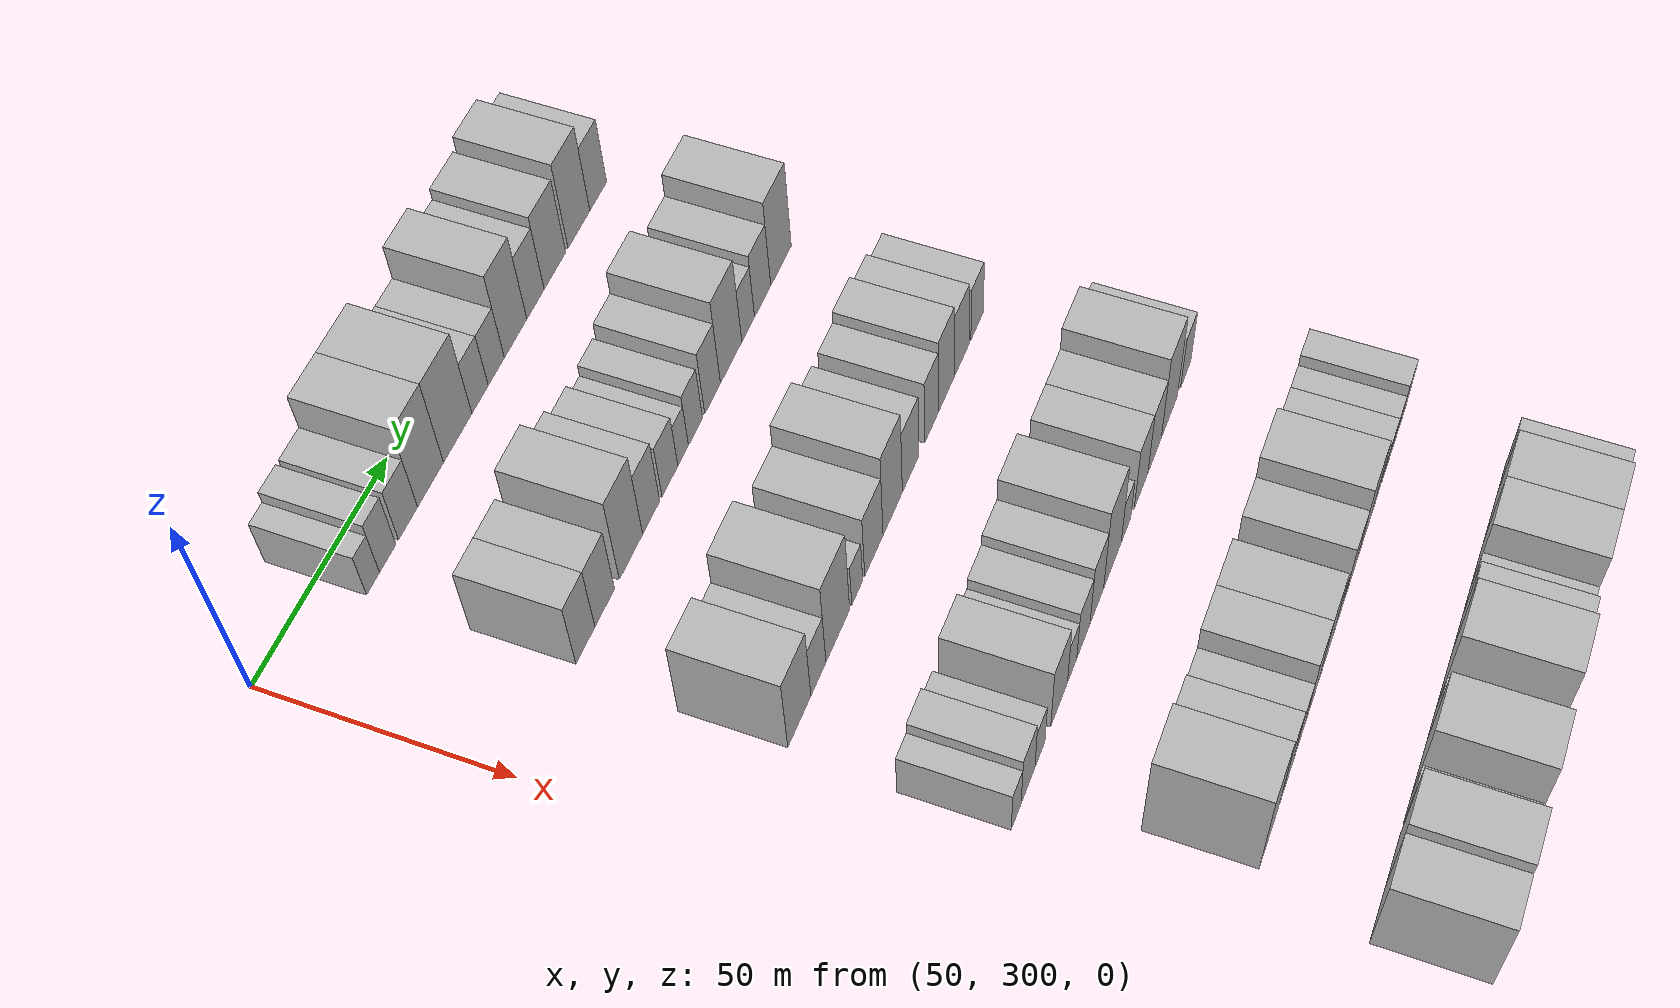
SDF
<sdf version="1.6">
 <world name="default">
  <model name="building_106">
   <static>1</static>
   <pose>50.0000 325.4204 0 0.000000 0.000000 0.000000</pose>
   <link name="link">
    <pose>0 0 6.00 0 0 0</pose>
    <collision name="collision"><geometry><box><size>20.0000 4.8585 12.0000</size></box></geometry></collision>
    <visual name="visual">
     <cast_shadows>0</cast_shadows>
     <geometry><box><size>20.0000 4.8585 12.0000</size></box></geometry>
     <material>
      <script>
       <uri>model://HANNAS_wall/materials/scripts</uri>
       <uri>model://HANNAS_wall/materials/textures</uri>
       <name>vrc/HANNAS_wall</name>
      </script>
     </material>
    </visual>
   </link>
  </model>
  <model name="building_107">
   <static>1</static>
   <pose>50.0000 330.9389 0 0.000000 0.000000 0.000000</pose>
   <link name="link">
    <pose>0 0 7.50 0 0 0</pose>
    <collision name="collision"><geometry><box><size>20.0000 6.1786 15.0000</size></box></geometry></collision>
    <visual name="visual">
     <cast_shadows>0</cast_shadows>
     <geometry><box><size>20.0000 6.1786 15.0000</size></box></geometry>
     <material>
      <script>
       <uri>model://HANNAS_wall/materials/scripts</uri>
       <uri>model://HANNAS_wall/materials/textures</uri>
       <name>vrc/HANNAS_wall</name>
      </script>
     </material>
    </visual>
   </link>
  </model>
  <model name="building_108">
   <static>1</static>
   <pose>50.0000 338.7005 0 0.000000 0.000000 0.000000</pose>
   <link name="link">
    <pose>0 0 7.50 0 0 0</pose>
    <collision name="collision"><geometry><box><size>20.0000 7.3446 15.0000</size></box></geometry></collision>
    <visual name="visual">
     <cast_shadows>0</cast_shadows>
     <geometry><box><size>20.0000 7.3446 15.0000</size></box></geometry>
     <material>
      <script>
       <uri>model://HANNAS_wall/materials/scripts</uri>
       <uri>model://HANNAS_wall/materials/textures</uri>
       <name>vrc/HANNAS_wall</name>
      </script>
     </material>
    </visual>
   </link>
  </model>
  <model name="building_109">
   <static>1</static>
   <pose>50.0000 347.5060 0 0.000000 0.000000 0.000000</pose>
   <link name="link">
    <pose>0 0 12.00 0 0 0</pose>
    <collision name="collision"><geometry><box><size>20.0000 10.2664 24.0000</size></box></geometry></collision>
    <visual name="visual">
     <cast_shadows>0</cast_shadows>
     <geometry><box><size>20.0000 10.2664 24.0000</size></box></geometry>
     <material>
      <script>
       <uri>model://HANNAS_wall/materials/scripts</uri>
       <uri>model://HANNAS_wall/materials/textures</uri>
       <name>vrc/HANNAS_wall</name>
      </script>
     </material>
    </visual>
   </link>
  </model>
  <model name="building_110">
   <static>1</static>
   <pose>50.0000 358.3746 0 0.000000 0.000000 0.000000</pose>
   <link name="link">
    <pose>0 0 12.00 0 0 0</pose>
    <collision name="collision"><geometry><box><size>20.0000 11.4708 24.0000</size></box></geometry></collision>
    <visual name="visual">
     <cast_shadows>0</cast_shadows>
     <geometry><box><size>20.0000 11.4708 24.0000</size></box></geometry>
     <material>
      <script>
       <uri>model://HANNAS_wall/materials/scripts</uri>
       <uri>model://HANNAS_wall/materials/textures</uri>
       <name>vrc/HANNAS_wall</name>
      </script>
     </material>
    </visual>
   </link>
  </model>
  <model name="building_111">
   <static>1</static>
   <pose>50.0000 367.4902 0 0.000000 0.000000 0.000000</pose>
   <link name="link">
    <pose>0 0 7.50 0 0 0</pose>
    <collision name="collision"><geometry><box><size>20.0000 6.7602 15.0000</size></box></geometry></collision>
    <visual name="visual">
     <cast_shadows>0</cast_shadows>
     <geometry><box><size>20.0000 6.7602 15.0000</size></box></geometry>
     <material>
      <script>
       <uri>model://HANNAS_wall/materials/scripts</uri>
       <uri>model://HANNAS_wall/materials/textures</uri>
       <name>vrc/HANNAS_wall</name>
      </script>
     </material>
    </visual>
   </link>
  </model>
  <model name="building_112">
   <static>1</static>
   <pose>50.0000 374.2570 0 0.000000 0.000000 0.000000</pose>
   <link name="link">
    <pose>0 0 7.50 0 0 0</pose>
    <collision name="collision"><geometry><box><size>20.0000 6.7734 15.0000</size></box></geometry></collision>
    <visual name="visual">
     <cast_shadows>0</cast_shadows>
     <geometry><box><size>20.0000 6.7734 15.0000</size></box></geometry>
     <material>
      <script>
       <uri>model://HANNAS_wall/materials/scripts</uri>
       <uri>model://HANNAS_wall/materials/textures</uri>
       <name>vrc/HANNAS_wall</name>
      </script>
     </material>
    </visual>
   </link>
  </model>
  <model name="building_113">
   <static>1</static>
   <pose>50.0000 382.4580 0 0.000000 0.000000 0.000000</pose>
   <link name="link">
    <pose>0 0 12.00 0 0 0</pose>
    <collision name="collision"><geometry><box><size>20.0000 9.6285 24.0000</size></box></geometry></collision>
    <visual name="visual">
     <cast_shadows>0</cast_shadows>
     <geometry><box><size>20.0000 9.6285 24.0000</size></box></geometry>
     <material>
      <script>
       <uri>model://HANNAS_wall/materials/scripts</uri>
       <uri>model://HANNAS_wall/materials/textures</uri>
       <name>vrc/HANNAS_wall</name>
      </script>
     </material>
    </visual>
   </link>
  </model>
  <model name="building_114">
   <static>1</static>
   <pose>50.0000 391.0517 0 0.000000 0.000000 0.000000</pose>
   <link name="link">
    <pose>0 0 9.00 0 0 0</pose>
    <collision name="collision"><geometry><box><size>20.0000 7.5590 18.0000</size></box></geometry></collision>
    <visual name="visual">
     <cast_shadows>0</cast_shadows>
     <geometry><box><size>20.0000 7.5590 18.0000</size></box></geometry>
     <material>
      <script>
       <uri>model://HANNAS_wall/materials/scripts</uri>
       <uri>model://HANNAS_wall/materials/textures</uri>
       <name>vrc/HANNAS_wall</name>
      </script>
     </material>
    </visual>
   </link>
  </model>
  <model name="building_115">
   <static>1</static>
   <pose>50.0000 399.6458 0 0.000000 0.000000 0.000000</pose>
   <link name="link">
    <pose>0 0 10.50 0 0 0</pose>
    <collision name="collision"><geometry><box><size>20.0000 9.6291 21.0000</size></box></geometry></collision>
    <visual name="visual">
     <cast_shadows>0</cast_shadows>
     <geometry><box><size>20.0000 9.6291 21.0000</size></box></geometry>
     <material>
      <script>
       <uri>model://HANNAS_wall/materials/scripts</uri>
       <uri>model://HANNAS_wall/materials/textures</uri>
       <name>vrc/HANNAS_wall</name>
      </script>
     </material>
    </visual>
   </link>
  </model>
  <model name="building_116">
   <static>1</static>
   <pose>50.0000 410.4415 0 0.000000 0.000000 0.000000</pose>
   <link name="link">
    <pose>0 0 12.00 0 0 0</pose>
    <collision name="collision"><geometry><box><size>20.0000 9.9625 24.0000</size></box></geometry></collision>
    <visual name="visual">
     <cast_shadows>0</cast_shadows>
     <geometry><box><size>20.0000 9.9625 24.0000</size></box></geometry>
     <material>
      <script>
       <uri>model://HANNAS_wall/materials/scripts</uri>
       <uri>model://HANNAS_wall/materials/textures</uri>
       <name>vrc/HANNAS_wall</name>
      </script>
     </material>
    </visual>
   </link>
  </model>
  <model name="building_117">
   <static>1</static>
   <pose>50.0000 419.3106 0 0.000000 0.000000 0.000000</pose>
   <link name="link">
    <pose>0 0 9.00 0 0 0</pose>
    <collision name="collision"><geometry><box><size>20.0000 7.7757 18.0000</size></box></geometry></collision>
    <visual name="visual">
     <cast_shadows>0</cast_shadows>
     <geometry><box><size>20.0000 7.7757 18.0000</size></box></geometry>
     <material>
      <script>
       <uri>model://HANNAS_wall/materials/scripts</uri>
       <uri>model://HANNAS_wall/materials/textures</uri>
       <name>vrc/HANNAS_wall</name>
      </script>
     </material>
    </visual>
   </link>
  </model>
  <model name="building_244">
   <static>1</static>
   <pose>90.0000 326.8426 0 0.000000 0.000000 0.000000</pose>
   <link name="link">
    <pose>0 0 9.00 0 0 0</pose>
    <collision name="collision"><geometry><box><size>20.0000 7.7727 18.0000</size></box></geometry></collision>
    <visual name="visual">
     <cast_shadows>0</cast_shadows>
     <geometry><box><size>20.0000 7.7727 18.0000</size></box></geometry>
     <material>
      <script>
       <uri>model://HANNAS_wall/materials/scripts</uri>
       <uri>model://HANNAS_wall/materials/textures</uri>
       <name>vrc/HANNAS_wall</name>
      </script>
     </material>
    </visual>
   </link>
  </model>
  <model name="building_245">
   <static>1</static>
   <pose>90.0000 334.8134 0 0.000000 0.000000 0.000000</pose>
   <link name="link">
    <pose>0 0 9.00 0 0 0</pose>
    <collision name="collision"><geometry><box><size>20.0000 8.1689 18.0000</size></box></geometry></collision>
    <visual name="visual">
     <cast_shadows>0</cast_shadows>
     <geometry><box><size>20.0000 8.1689 18.0000</size></box></geometry>
     <material>
      <script>
       <uri>model://HANNAS_wall/materials/scripts</uri>
       <uri>model://HANNAS_wall/materials/textures</uri>
       <name>vrc/HANNAS_wall</name>
      </script>
     </material>
    </visual>
   </link>
  </model>
  <model name="building_246">
   <static>1</static>
   <pose>90.0000 345.8776 0 0.000000 0.000000 0.000000</pose>
   <link name="link">
    <pose>0 0 12.00 0 0 0</pose>
    <collision name="collision"><geometry><box><size>20.0000 9.9597 24.0000</size></box></geometry></collision>
    <visual name="visual">
     <cast_shadows>0</cast_shadows>
     <geometry><box><size>20.0000 9.9597 24.0000</size></box></geometry>
     <material>
      <script>
       <uri>model://HANNAS_wall/materials/scripts</uri>
       <uri>model://HANNAS_wall/materials/textures</uri>
       <name>vrc/HANNAS_wall</name>
      </script>
     </material>
    </visual>
   </link>
  </model>
  <model name="building_247">
   <static>1</static>
   <pose>90.0000 354.5977 0 0.000000 0.000000 0.000000</pose>
   <link name="link">
    <pose>0 0 9.00 0 0 0</pose>
    <collision name="collision"><geometry><box><size>20.0000 7.4805 18.0000</size></box></geometry></collision>
    <visual name="visual">
     <cast_shadows>0</cast_shadows>
     <geometry><box><size>20.0000 7.4805 18.0000</size></box></geometry>
     <material>
      <script>
       <uri>model://HANNAS_wall/materials/scripts</uri>
       <uri>model://HANNAS_wall/materials/textures</uri>
       <name>vrc/HANNAS_wall</name>
      </script>
     </material>
    </visual>
   </link>
  </model>
  <model name="building_248">
   <static>1</static>
   <pose>90.0000 362.8601 0 0.000000 0.000000 0.000000</pose>
   <link name="link">
    <pose>0 0 7.50 0 0 0</pose>
    <collision name="collision"><geometry><box><size>20.0000 7.0443 15.0000</size></box></geometry></collision>
    <visual name="visual">
     <cast_shadows>0</cast_shadows>
     <geometry><box><size>20.0000 7.0443 15.0000</size></box></geometry>
     <material>
      <script>
       <uri>model://HANNAS_wall/materials/scripts</uri>
       <uri>model://HANNAS_wall/materials/textures</uri>
       <name>vrc/HANNAS_wall</name>
      </script>
     </material>
    </visual>
   </link>
  </model>
  <model name="building_249">
   <static>1</static>
   <pose>90.0000 368.7837 0 0.000000 0.000000 0.000000</pose>
   <link name="link">
    <pose>0 0 6.00 0 0 0</pose>
    <collision name="collision"><geometry><box><size>20.0000 4.8031 12.0000</size></box></geometry></collision>
    <visual name="visual">
     <cast_shadows>0</cast_shadows>
     <geometry><box><size>20.0000 4.8031 12.0000</size></box></geometry>
     <material>
      <script>
       <uri>model://HANNAS_wall/materials/scripts</uri>
       <uri>model://HANNAS_wall/materials/textures</uri>
       <name>vrc/HANNAS_wall</name>
      </script>
     </material>
    </visual>
   </link>
  </model>
  <model name="building_250">
   <static>1</static>
   <pose>90.0000 374.4103 0 0.000000 0.000000 0.000000</pose>
   <link name="link">
    <pose>0 0 7.50 0 0 0</pose>
    <collision name="collision"><geometry><box><size>20.0000 6.4501 15.0000</size></box></geometry></collision>
    <visual name="visual">
     <cast_shadows>0</cast_shadows>
     <geometry><box><size>20.0000 6.4501 15.0000</size></box></geometry>
     <material>
      <script>
       <uri>model://HANNAS_wall/materials/scripts</uri>
       <uri>model://HANNAS_wall/materials/textures</uri>
       <name>vrc/HANNAS_wall</name>
      </script>
     </material>
    </visual>
   </link>
  </model>
  <model name="building_251">
   <static>1</static>
   <pose>90.0000 382.3186 0 0.000000 0.000000 0.000000</pose>
   <link name="link">
    <pose>0 0 9.00 0 0 0</pose>
    <collision name="collision"><geometry><box><size>20.0000 7.3665 18.0000</size></box></geometry></collision>
    <visual name="visual">
     <cast_shadows>0</cast_shadows>
     <geometry><box><size>20.0000 7.3665 18.0000</size></box></geometry>
     <material>
      <script>
       <uri>model://HANNAS_wall/materials/scripts</uri>
       <uri>model://HANNAS_wall/materials/textures</uri>
       <name>vrc/HANNAS_wall</name>
      </script>
     </material>
    </visual>
   </link>
  </model>
  <model name="building_252">
   <static>1</static>
   <pose>90.0000 391.0927 0 0.000000 0.000000 0.000000</pose>
   <link name="link">
    <pose>0 0 12.00 0 0 0</pose>
    <collision name="collision"><geometry><box><size>20.0000 10.1816 24.0000</size></box></geometry></collision>
    <visual name="visual">
     <cast_shadows>0</cast_shadows>
     <geometry><box><size>20.0000 10.1816 24.0000</size></box></geometry>
     <material>
      <script>
       <uri>model://HANNAS_wall/materials/scripts</uri>
       <uri>model://HANNAS_wall/materials/textures</uri>
       <name>vrc/HANNAS_wall</name>
      </script>
     </material>
    </visual>
   </link>
  </model>
  <model name="building_253">
   <static>1</static>
   <pose>90.0000 399.2632 0 0.000000 0.000000 0.000000</pose>
   <link name="link">
    <pose>0 0 7.50 0 0 0</pose>
    <collision name="collision"><geometry><box><size>20.0000 6.1594 15.0000</size></box></geometry></collision>
    <visual name="visual">
     <cast_shadows>0</cast_shadows>
     <geometry><box><size>20.0000 6.1594 15.0000</size></box></geometry>
     <material>
      <script>
       <uri>model://HANNAS_wall/materials/scripts</uri>
       <uri>model://HANNAS_wall/materials/textures</uri>
       <name>vrc/HANNAS_wall</name>
      </script>
     </material>
    </visual>
   </link>
  </model>
  <model name="building_254">
   <static>1</static>
   <pose>90.0000 406.3347 0 0.000000 0.000000 0.000000</pose>
   <link name="link">
    <pose>0 0 9.00 0 0 0</pose>
    <collision name="collision"><geometry><box><size>20.0000 7.9835 18.0000</size></box></geometry></collision>
    <visual name="visual">
     <cast_shadows>0</cast_shadows>
     <geometry><box><size>20.0000 7.9835 18.0000</size></box></geometry>
     <material>
      <script>
       <uri>model://HANNAS_wall/materials/scripts</uri>
       <uri>model://HANNAS_wall/materials/textures</uri>
       <name>vrc/HANNAS_wall</name>
      </script>
     </material>
    </visual>
   </link>
  </model>
  <model name="building_255">
   <static>1</static>
   <pose>90.0000 415.4779 0 0.000000 0.000000 0.000000</pose>
   <link name="link">
    <pose>0 0 12.00 0 0 0</pose>
    <collision name="collision"><geometry><box><size>20.0000 10.3031 24.0000</size></box></geometry></collision>
    <visual name="visual">
     <cast_shadows>0</cast_shadows>
     <geometry><box><size>20.0000 10.3031 24.0000</size></box></geometry>
     <material>
      <script>
       <uri>model://HANNAS_wall/materials/scripts</uri>
       <uri>model://HANNAS_wall/materials/textures</uri>
       <name>vrc/HANNAS_wall</name>
      </script>
     </material>
    </visual>
   </link>
  </model>
  <model name="building_389">
   <static>1</static>
   <pose>130.0000 325.7449 0 0.000000 0.000000 0.000000</pose>
   <link name="link">
    <pose>0 0 10.50 0 0 0</pose>
    <collision name="collision"><geometry><box><size>20.0000 10.3652 21.0000</size></box></geometry></collision>
    <visual name="visual">
     <cast_shadows>0</cast_shadows>
     <geometry><box><size>20.0000 10.3652 21.0000</size></box></geometry>
     <material>
      <script>
       <uri>model://HANNAS_wall/materials/scripts</uri>
       <uri>model://HANNAS_wall/materials/textures</uri>
       <name>vrc/HANNAS_wall</name>
      </script>
     </material>
    </visual>
   </link>
  </model>
  <model name="building_390">
   <static>1</static>
   <pose>130.0000 334.3861 0 0.000000 0.000000 0.000000</pose>
   <link name="link">
    <pose>0 0 7.50 0 0 0</pose>
    <collision name="collision"><geometry><box><size>20.0000 6.9171 15.0000</size></box></geometry></collision>
    <visual name="visual">
     <cast_shadows>0</cast_shadows>
     <geometry><box><size>20.0000 6.9171 15.0000</size></box></geometry>
     <material>
      <script>
       <uri>model://HANNAS_wall/materials/scripts</uri>
       <uri>model://HANNAS_wall/materials/textures</uri>
       <name>vrc/HANNAS_wall</name>
      </script>
     </material>
    </visual>
   </link>
  </model>
  <model name="building_391">
   <static>1</static>
   <pose>130.0000 343.4129 0 0.000000 0.000000 0.000000</pose>
   <link name="link">
    <pose>0 0 12.00 0 0 0</pose>
    <collision name="collision"><geometry><box><size>20.0000 11.1364 24.0000</size></box></geometry></collision>
    <visual name="visual">
     <cast_shadows>0</cast_shadows>
     <geometry><box><size>20.0000 11.1364 24.0000</size></box></geometry>
     <material>
      <script>
       <uri>model://HANNAS_wall/materials/scripts</uri>
       <uri>model://HANNAS_wall/materials/textures</uri>
       <name>vrc/HANNAS_wall</name>
      </script>
     </material>
    </visual>
   </link>
  </model>
  <model name="building_392">
   <static>1</static>
   <pose>130.0000 352.5982 0 0.000000 0.000000 0.000000</pose>
   <link name="link">
    <pose>0 0 6.00 0 0 0</pose>
    <collision name="collision"><geometry><box><size>20.0000 5.2343 12.0000</size></box></geometry></collision>
    <visual name="visual">
     <cast_shadows>0</cast_shadows>
     <geometry><box><size>20.0000 5.2343 12.0000</size></box></geometry>
     <material>
      <script>
       <uri>model://HANNAS_wall/materials/scripts</uri>
       <uri>model://HANNAS_wall/materials/textures</uri>
       <name>vrc/HANNAS_wall</name>
      </script>
     </material>
    </visual>
   </link>
  </model>
  <model name="building_393">
   <static>1</static>
   <pose>130.0000 360.7076 0 0.000000 0.000000 0.000000</pose>
   <link name="link">
    <pose>0 0 9.00 0 0 0</pose>
    <collision name="collision"><geometry><box><size>20.0000 8.9844 18.0000</size></box></geometry></collision>
    <visual name="visual">
     <cast_shadows>0</cast_shadows>
     <geometry><box><size>20.0000 8.9844 18.0000</size></box></geometry>
     <material>
      <script>
       <uri>model://HANNAS_wall/materials/scripts</uri>
       <uri>model://HANNAS_wall/materials/textures</uri>
       <name>vrc/HANNAS_wall</name>
      </script>
     </material>
    </visual>
   </link>
  </model>
  <model name="building_394">
   <static>1</static>
   <pose>130.0000 370.0457 0 0.000000 0.000000 0.000000</pose>
   <link name="link">
    <pose>0 0 12.00 0 0 0</pose>
    <collision name="collision"><geometry><box><size>20.0000 9.6919 24.0000</size></box></geometry></collision>
    <visual name="visual">
     <cast_shadows>0</cast_shadows>
     <geometry><box><size>20.0000 9.6919 24.0000</size></box></geometry>
     <material>
      <script>
       <uri>model://HANNAS_wall/materials/scripts</uri>
       <uri>model://HANNAS_wall/materials/textures</uri>
       <name>vrc/HANNAS_wall</name>
      </script>
     </material>
    </visual>
   </link>
  </model>
  <model name="building_395">
   <static>1</static>
   <pose>130.0000 379.1431 0 0.000000 0.000000 0.000000</pose>
   <link name="link">
    <pose>0 0 9.00 0 0 0</pose>
    <collision name="collision"><geometry><box><size>20.0000 8.5029 18.0000</size></box></geometry></collision>
    <visual name="visual">
     <cast_shadows>0</cast_shadows>
     <geometry><box><size>20.0000 8.5029 18.0000</size></box></geometry>
     <material>
      <script>
       <uri>model://HANNAS_wall/materials/scripts</uri>
       <uri>model://HANNAS_wall/materials/textures</uri>
       <name>vrc/HANNAS_wall</name>
      </script>
     </material>
    </visual>
   </link>
  </model>
  <model name="building_396">
   <static>1</static>
   <pose>130.0000 389.9962 0 0.000000 0.000000 0.000000</pose>
   <link name="link">
    <pose>0 0 9.00 0 0 0</pose>
    <collision name="collision"><geometry><box><size>20.0000 7.2033 18.0000</size></box></geometry></collision>
    <visual name="visual">
     <cast_shadows>0</cast_shadows>
     <geometry><box><size>20.0000 7.2033 18.0000</size></box></geometry>
     <material>
      <script>
       <uri>model://HANNAS_wall/materials/scripts</uri>
       <uri>model://HANNAS_wall/materials/textures</uri>
       <name>vrc/HANNAS_wall</name>
      </script>
     </material>
    </visual>
   </link>
  </model>
  <model name="building_397">
   <static>1</static>
   <pose>130.0000 397.8140 0 0.000000 0.000000 0.000000</pose>
   <link name="link">
    <pose>0 0 10.50 0 0 0</pose>
    <collision name="collision"><geometry><box><size>20.0000 8.4322 21.0000</size></box></geometry></collision>
    <visual name="visual">
     <cast_shadows>0</cast_shadows>
     <geometry><box><size>20.0000 8.4322 21.0000</size></box></geometry>
     <material>
      <script>
       <uri>model://HANNAS_wall/materials/scripts</uri>
       <uri>model://HANNAS_wall/materials/textures</uri>
       <name>vrc/HANNAS_wall</name>
      </script>
     </material>
    </visual>
   </link>
  </model>
  <model name="building_398">
   <static>1</static>
   <pose>130.0000 406.1088 0 0.000000 0.000000 0.000000</pose>
   <link name="link">
    <pose>0 0 9.00 0 0 0</pose>
    <collision name="collision"><geometry><box><size>20.0000 8.1574 18.0000</size></box></geometry></collision>
    <visual name="visual">
     <cast_shadows>0</cast_shadows>
     <geometry><box><size>20.0000 8.1574 18.0000</size></box></geometry>
     <material>
      <script>
       <uri>model://HANNAS_wall/materials/scripts</uri>
       <uri>model://HANNAS_wall/materials/textures</uri>
       <name>vrc/HANNAS_wall</name>
      </script>
     </material>
    </visual>
   </link>
  </model>
  <model name="building_399">
   <static>1</static>
   <pose>130.0000 414.6578 0 0.000000 0.000000 0.000000</pose>
   <link name="link">
    <pose>0 0 7.50 0 0 0</pose>
    <collision name="collision"><geometry><box><size>20.0000 6.9406 15.0000</size></box></geometry></collision>
    <visual name="visual">
     <cast_shadows>0</cast_shadows>
     <geometry><box><size>20.0000 6.9406 15.0000</size></box></geometry>
     <material>
      <script>
       <uri>model://HANNAS_wall/materials/scripts</uri>
       <uri>model://HANNAS_wall/materials/textures</uri>
       <name>vrc/HANNAS_wall</name>
      </script>
     </material>
    </visual>
   </link>
  </model>
  <model name="building_533">
   <static>1</static>
   <pose>170.0000 321.5762 0 0.000000 0.000000 0.000000</pose>
   <link name="link">
    <pose>0 0 6.00 0 0 0</pose>
    <collision name="collision"><geometry><box><size>20.0000 4.9804 12.0000</size></box></geometry></collision>
    <visual name="visual">
     <cast_shadows>0</cast_shadows>
     <geometry><box><size>20.0000 4.9804 12.0000</size></box></geometry>
     <material>
      <script>
       <uri>model://HANNAS_wall/materials/scripts</uri>
       <uri>model://HANNAS_wall/materials/textures</uri>
       <name>vrc/HANNAS_wall</name>
      </script>
     </material>
    </visual>
   </link>
  </model>
  <model name="building_534">
   <static>1</static>
   <pose>170.0000 327.5664 0 0.000000 0.000000 0.000000</pose>
   <link name="link">
    <pose>0 0 7.50 0 0 0</pose>
    <collision name="collision"><geometry><box><size>20.0000 7.0000 15.0000</size></box></geometry></collision>
    <visual name="visual">
     <cast_shadows>0</cast_shadows>
     <geometry><box><size>20.0000 7.0000 15.0000</size></box></geometry>
     <material>
      <script>
       <uri>model://HANNAS_wall/materials/scripts</uri>
       <uri>model://HANNAS_wall/materials/textures</uri>
       <name>vrc/HANNAS_wall</name>
      </script>
     </material>
    </visual>
   </link>
  </model>
  <model name="building_535">
   <static>1</static>
   <pose>170.0000 333.6730 0 0.000000 0.000000 0.000000</pose>
   <link name="link">
    <pose>0 0 6.00 0 0 0</pose>
    <collision name="collision"><geometry><box><size>20.0000 5.2133 12.0000</size></box></geometry></collision>
    <visual name="visual">
     <cast_shadows>0</cast_shadows>
     <geometry><box><size>20.0000 5.2133 12.0000</size></box></geometry>
     <material>
      <script>
       <uri>model://HANNAS_wall/materials/scripts</uri>
       <uri>model://HANNAS_wall/materials/textures</uri>
       <name>vrc/HANNAS_wall</name>
      </script>
     </material>
    </visual>
   </link>
  </model>
  <model name="building_536">
   <static>1</static>
   <pose>170.0000 343.7082 0 0.000000 0.000000 0.000000</pose>
   <link name="link">
    <pose>0 0 9.00 0 0 0</pose>
    <collision name="collision"><geometry><box><size>20.0000 8.8570 18.0000</size></box></geometry></collision>
    <visual name="visual">
     <cast_shadows>0</cast_shadows>
     <geometry><box><size>20.0000 8.8570 18.0000</size></box></geometry>
     <material>
      <script>
       <uri>model://HANNAS_wall/materials/scripts</uri>
       <uri>model://HANNAS_wall/materials/textures</uri>
       <name>vrc/HANNAS_wall</name>
      </script>
     </material>
    </visual>
   </link>
  </model>
  <model name="building_537">
   <static>1</static>
   <pose>170.0000 350.6334 0 0.000000 0.000000 0.000000</pose>
   <link name="link">
    <pose>0 0 6.00 0 0 0</pose>
    <collision name="collision"><geometry><box><size>20.0000 4.9932 12.0000</size></box></geometry></collision>
    <visual name="visual">
     <cast_shadows>0</cast_shadows>
     <geometry><box><size>20.0000 4.9932 12.0000</size></box></geometry>
     <material>
      <script>
       <uri>model://HANNAS_wall/materials/scripts</uri>
       <uri>model://HANNAS_wall/materials/textures</uri>
       <name>vrc/HANNAS_wall</name>
      </script>
     </material>
    </visual>
   </link>
  </model>
  <model name="building_538">
   <static>1</static>
   <pose>170.0000 356.7687 0 0.000000 0.000000 0.000000</pose>
   <link name="link">
    <pose>0 0 7.50 0 0 0</pose>
    <collision name="collision"><geometry><box><size>20.0000 7.2774 15.0000</size></box></geometry></collision>
    <visual name="visual">
     <cast_shadows>0</cast_shadows>
     <geometry><box><size>20.0000 7.2774 15.0000</size></box></geometry>
     <material>
      <script>
       <uri>model://HANNAS_wall/materials/scripts</uri>
       <uri>model://HANNAS_wall/materials/textures</uri>
       <name>vrc/HANNAS_wall</name>
      </script>
     </material>
    </visual>
   </link>
  </model>
  <model name="building_539">
   <static>1</static>
   <pose>170.0000 364.2369 0 0.000000 0.000000 0.000000</pose>
   <link name="link">
    <pose>0 0 9.00 0 0 0</pose>
    <collision name="collision"><geometry><box><size>20.0000 7.6590 18.0000</size></box></geometry></collision>
    <visual name="visual">
     <cast_shadows>0</cast_shadows>
     <geometry><box><size>20.0000 7.6590 18.0000</size></box></geometry>
     <material>
      <script>
       <uri>model://HANNAS_wall/materials/scripts</uri>
       <uri>model://HANNAS_wall/materials/textures</uri>
       <name>vrc/HANNAS_wall</name>
      </script>
     </material>
    </visual>
   </link>
  </model>
  <model name="building_540">
   <static>1</static>
   <pose>170.0000 373.0842 0 0.000000 0.000000 0.000000</pose>
   <link name="link">
    <pose>0 0 12.00 0 0 0</pose>
    <collision name="collision"><geometry><box><size>20.0000 10.0356 24.0000</size></box></geometry></collision>
    <visual name="visual">
     <cast_shadows>0</cast_shadows>
     <geometry><box><size>20.0000 10.0356 24.0000</size></box></geometry>
     <material>
      <script>
       <uri>model://HANNAS_wall/materials/scripts</uri>
       <uri>model://HANNAS_wall/materials/textures</uri>
       <name>vrc/HANNAS_wall</name>
      </script>
     </material>
    </visual>
   </link>
  </model>
  <model name="building_541">
   <static>1</static>
   <pose>170.0000 380.8771 0 0.000000 0.000000 0.000000</pose>
   <link name="link">
    <pose>0 0 6.00 0 0 0</pose>
    <collision name="collision"><geometry><box><size>20.0000 5.5501 12.0000</size></box></geometry></collision>
    <visual name="visual">
     <cast_shadows>0</cast_shadows>
     <geometry><box><size>20.0000 5.5501 12.0000</size></box></geometry>
     <material>
      <script>
       <uri>model://HANNAS_wall/materials/scripts</uri>
       <uri>model://HANNAS_wall/materials/textures</uri>
       <name>vrc/HANNAS_wall</name>
      </script>
     </material>
    </visual>
   </link>
  </model>
  <model name="building_542">
   <static>1</static>
   <pose>170.0000 389.7704 0 0.000000 0.000000 0.000000</pose>
   <link name="link">
    <pose>0 0 9.00 0 0 0</pose>
    <collision name="collision"><geometry><box><size>20.0000 8.2366 18.0000</size></box></geometry></collision>
    <visual name="visual">
     <cast_shadows>0</cast_shadows>
     <geometry><box><size>20.0000 8.2366 18.0000</size></box></geometry>
     <material>
      <script>
       <uri>model://HANNAS_wall/materials/scripts</uri>
       <uri>model://HANNAS_wall/materials/textures</uri>
       <name>vrc/HANNAS_wall</name>
      </script>
     </material>
    </visual>
   </link>
  </model>
  <model name="building_543">
   <static>1</static>
   <pose>170.0000 397.9026 0 0.000000 0.000000 0.000000</pose>
   <link name="link">
    <pose>0 0 9.00 0 0 0</pose>
    <collision name="collision"><geometry><box><size>20.0000 8.0278 18.0000</size></box></geometry></collision>
    <visual name="visual">
     <cast_shadows>0</cast_shadows>
     <geometry><box><size>20.0000 8.0278 18.0000</size></box></geometry>
     <material>
      <script>
       <uri>model://HANNAS_wall/materials/scripts</uri>
       <uri>model://HANNAS_wall/materials/textures</uri>
       <name>vrc/HANNAS_wall</name>
      </script>
     </material>
    </visual>
   </link>
  </model>
  <model name="building_544">
   <static>1</static>
   <pose>170.0000 406.9036 0 0.000000 0.000000 0.000000</pose>
   <link name="link">
    <pose>0 0 12.00 0 0 0</pose>
    <collision name="collision"><geometry><box><size>20.0000 9.9741 24.0000</size></box></geometry></collision>
    <visual name="visual">
     <cast_shadows>0</cast_shadows>
     <geometry><box><size>20.0000 9.9741 24.0000</size></box></geometry>
     <material>
      <script>
       <uri>model://HANNAS_wall/materials/scripts</uri>
       <uri>model://HANNAS_wall/materials/textures</uri>
       <name>vrc/HANNAS_wall</name>
      </script>
     </material>
    </visual>
   </link>
  </model>
  <model name="building_545">
   <static>1</static>
   <pose>170.0000 417.1855 0 0.000000 0.000000 0.000000</pose>
   <link name="link">
    <pose>0 0 7.50 0 0 0</pose>
    <collision name="collision"><geometry><box><size>20.0000 6.5897 15.0000</size></box></geometry></collision>
    <visual name="visual">
     <cast_shadows>0</cast_shadows>
     <geometry><box><size>20.0000 6.5897 15.0000</size></box></geometry>
     <material>
      <script>
       <uri>model://HANNAS_wall/materials/scripts</uri>
       <uri>model://HANNAS_wall/materials/textures</uri>
       <name>vrc/HANNAS_wall</name>
      </script>
     </material>
    </visual>
   </link>
  </model>
  <model name="building_679">
   <static>1</static>
   <pose>210.0000 331.9483 0 0.000000 0.000000 0.000000</pose>
   <link name="link">
    <pose>0 0 12.00 0 0 0</pose>
    <collision name="collision"><geometry><box><size>20.0000 11.2717 24.0000</size></box></geometry></collision>
    <visual name="visual">
     <cast_shadows>0</cast_shadows>
     <geometry><box><size>20.0000 11.2717 24.0000</size></box></geometry>
     <material>
      <script>
       <uri>model://HANNAS_wall/materials/scripts</uri>
       <uri>model://HANNAS_wall/materials/textures</uri>
       <name>vrc/HANNAS_wall</name>
      </script>
     </material>
    </visual>
   </link>
  </model>
  <model name="building_680">
   <static>1</static>
   <pose>210.0000 342.5881 0 0.000000 0.000000 0.000000</pose>
   <link name="link">
    <pose>0 0 9.00 0 0 0</pose>
    <collision name="collision"><geometry><box><size>20.0000 8.0079 18.0000</size></box></geometry></collision>
    <visual name="visual">
     <cast_shadows>0</cast_shadows>
     <geometry><box><size>20.0000 8.0079 18.0000</size></box></geometry>
     <material>
      <script>
       <uri>model://HANNAS_wall/materials/scripts</uri>
       <uri>model://HANNAS_wall/materials/textures</uri>
       <name>vrc/HANNAS_wall</name>
      </script>
     </material>
    </visual>
   </link>
  </model>
  <model name="building_681">
   <static>1</static>
   <pose>210.0000 350.1872 0 0.000000 0.000000 0.000000</pose>
   <link name="link">
    <pose>0 0 7.50 0 0 0</pose>
    <collision name="collision"><geometry><box><size>20.0000 7.1902 15.0000</size></box></geometry></collision>
    <visual name="visual">
     <cast_shadows>0</cast_shadows>
     <geometry><box><size>20.0000 7.1902 15.0000</size></box></geometry>
     <material>
      <script>
       <uri>model://HANNAS_wall/materials/scripts</uri>
       <uri>model://HANNAS_wall/materials/textures</uri>
       <name>vrc/HANNAS_wall</name>
      </script>
     </material>
    </visual>
   </link>
  </model>
  <model name="building_682">
   <static>1</static>
   <pose>210.0000 358.2507 0 0.000000 0.000000 0.000000</pose>
   <link name="link">
    <pose>0 0 10.50 0 0 0</pose>
    <collision name="collision"><geometry><box><size>20.0000 8.9368 21.0000</size></box></geometry></collision>
    <visual name="visual">
     <cast_shadows>0</cast_shadows>
     <geometry><box><size>20.0000 8.9368 21.0000</size></box></geometry>
     <material>
      <script>
       <uri>model://HANNAS_wall/materials/scripts</uri>
       <uri>model://HANNAS_wall/materials/textures</uri>
       <name>vrc/HANNAS_wall</name>
      </script>
     </material>
    </visual>
   </link>
  </model>
  <model name="building_683">
   <static>1</static>
   <pose>210.0000 367.5112 0 0.000000 0.000000 0.000000</pose>
   <link name="link">
    <pose>0 0 10.50 0 0 0</pose>
    <collision name="collision"><geometry><box><size>20.0000 9.5842 21.0000</size></box></geometry></collision>
    <visual name="visual">
     <cast_shadows>0</cast_shadows>
     <geometry><box><size>20.0000 9.5842 21.0000</size></box></geometry>
     <material>
      <script>
       <uri>model://HANNAS_wall/materials/scripts</uri>
       <uri>model://HANNAS_wall/materials/textures</uri>
       <name>vrc/HANNAS_wall</name>
      </script>
     </material>
    </visual>
   </link>
  </model>
  <model name="building_684">
   <static>1</static>
   <pose>210.0000 375.2113 0 0.000000 0.000000 0.000000</pose>
   <link name="link">
    <pose>0 0 6.00 0 0 0</pose>
    <collision name="collision"><geometry><box><size>20.0000 5.8160 12.0000</size></box></geometry></collision>
    <visual name="visual">
     <cast_shadows>0</cast_shadows>
     <geometry><box><size>20.0000 5.8160 12.0000</size></box></geometry>
     <material>
      <script>
       <uri>model://HANNAS_wall/materials/scripts</uri>
       <uri>model://HANNAS_wall/materials/textures</uri>
       <name>vrc/HANNAS_wall</name>
      </script>
     </material>
    </visual>
   </link>
  </model>
  <model name="building_685">
   <static>1</static>
   <pose>210.0000 383.3238 0 0.000000 0.000000 0.000000</pose>
   <link name="link">
    <pose>0 0 9.00 0 0 0</pose>
    <collision name="collision"><geometry><box><size>20.0000 8.4091 18.0000</size></box></geometry></collision>
    <visual name="visual">
     <cast_shadows>0</cast_shadows>
     <geometry><box><size>20.0000 8.4091 18.0000</size></box></geometry>
     <material>
      <script>
       <uri>model://HANNAS_wall/materials/scripts</uri>
       <uri>model://HANNAS_wall/materials/textures</uri>
       <name>vrc/HANNAS_wall</name>
      </script>
     </material>
    </visual>
   </link>
  </model>
  <model name="building_686">
   <static>1</static>
   <pose>210.0000 392.9656 0 0.000000 0.000000 0.000000</pose>
   <link name="link">
    <pose>0 0 12.00 0 0 0</pose>
    <collision name="collision"><geometry><box><size>20.0000 10.8745 24.0000</size></box></geometry></collision>
    <visual name="visual">
     <cast_shadows>0</cast_shadows>
     <geometry><box><size>20.0000 10.8745 24.0000</size></box></geometry>
     <material>
      <script>
       <uri>model://HANNAS_wall/materials/scripts</uri>
       <uri>model://HANNAS_wall/materials/textures</uri>
       <name>vrc/HANNAS_wall</name>
      </script>
     </material>
    </visual>
   </link>
  </model>
  <model name="building_687">
   <static>1</static>
   <pose>210.0000 400.8788 0 0.000000 0.000000 0.000000</pose>
   <link name="link">
    <pose>0 0 6.00 0 0 0</pose>
    <collision name="collision"><geometry><box><size>20.0000 4.9519 12.0000</size></box></geometry></collision>
    <visual name="visual">
     <cast_shadows>0</cast_shadows>
     <geometry><box><size>20.0000 4.9519 12.0000</size></box></geometry>
     <material>
      <script>
       <uri>model://HANNAS_wall/materials/scripts</uri>
       <uri>model://HANNAS_wall/materials/textures</uri>
       <name>vrc/HANNAS_wall</name>
      </script>
     </material>
    </visual>
   </link>
  </model>
  <model name="building_688">
   <static>1</static>
   <pose>210.0000 409.3433 0 0.000000 0.000000 0.000000</pose>
   <link name="link">
    <pose>0 0 6.00 0 0 0</pose>
    <collision name="collision"><geometry><box><size>20.0000 5.9772 12.0000</size></box></geometry></collision>
    <visual name="visual">
     <cast_shadows>0</cast_shadows>
     <geometry><box><size>20.0000 5.9772 12.0000</size></box></geometry>
     <material>
      <script>
       <uri>model://HANNAS_wall/materials/scripts</uri>
       <uri>model://HANNAS_wall/materials/textures</uri>
       <name>vrc/HANNAS_wall</name>
      </script>
     </material>
    </visual>
   </link>
  </model>
  <model name="building_689">
   <static>1</static>
   <pose>210.0000 414.8991 0 0.000000 0.000000 0.000000</pose>
   <link name="link">
    <pose>0 0 6.00 0 0 0</pose>
    <collision name="collision"><geometry><box><size>20.0000 5.1343 12.0000</size></box></geometry></collision>
    <visual name="visual">
     <cast_shadows>0</cast_shadows>
     <geometry><box><size>20.0000 5.1343 12.0000</size></box></geometry>
     <material>
      <script>
       <uri>model://HANNAS_wall/materials/scripts</uri>
       <uri>model://HANNAS_wall/materials/textures</uri>
       <name>vrc/HANNAS_wall</name>
      </script>
     </material>
    </visual>
   </link>
  </model>
  <model name="building_690">
   <static>1</static>
   <pose>210.0000 420.6126 0 0.000000 0.000000 0.000000</pose>
   <link name="link">
    <pose>0 0 7.50 0 0 0</pose>
    <collision name="collision"><geometry><box><size>20.0000 6.2927 15.0000</size></box></geometry></collision>
    <visual name="visual">
     <cast_shadows>0</cast_shadows>
     <geometry><box><size>20.0000 6.2927 15.0000</size></box></geometry>
     <material>
      <script>
       <uri>model://HANNAS_wall/materials/scripts</uri>
       <uri>model://HANNAS_wall/materials/textures</uri>
       <name>vrc/HANNAS_wall</name>
      </script>
     </material>
    </visual>
   </link>
  </model>
  <model name="building_816">
   <static>1</static>
   <pose>250.0000 324.8987 0 0.000000 0.000000 0.000000</pose>
   <link name="link">
    <pose>0 0 10.50 0 0 0</pose>
    <collision name="collision"><geometry><box><size>20.0000 9.9280 21.0000</size></box></geometry></collision>
    <visual name="visual">
     <cast_shadows>0</cast_shadows>
     <geometry><box><size>20.0000 9.9280 21.0000</size></box></geometry>
     <material>
      <script>
       <uri>model://HANNAS_wall/materials/scripts</uri>
       <uri>model://HANNAS_wall/materials/textures</uri>
       <name>vrc/HANNAS_wall</name>
      </script>
     </material>
    </visual>
   </link>
  </model>
  <model name="building_817">
   <static>1</static>
   <pose>250.0000 334.9821 0 0.000000 0.000000 0.000000</pose>
   <link name="link">
    <pose>0 0 12.00 0 0 0</pose>
    <collision name="collision"><geometry><box><size>20.0000 10.2388 24.0000</size></box></geometry></collision>
    <visual name="visual">
     <cast_shadows>0</cast_shadows>
     <geometry><box><size>20.0000 10.2388 24.0000</size></box></geometry>
     <material>
      <script>
       <uri>model://HANNAS_wall/materials/scripts</uri>
       <uri>model://HANNAS_wall/materials/textures</uri>
       <name>vrc/HANNAS_wall</name>
      </script>
     </material>
    </visual>
   </link>
  </model>
  <model name="building_818">
   <static>1</static>
   <pose>250.0000 344.5789 0 0.000000 0.000000 0.000000</pose>
   <link name="link">
    <pose>0 0 6.00 0 0 0</pose>
    <collision name="collision"><geometry><box><size>20.0000 4.9548 12.0000</size></box></geometry></collision>
    <visual name="visual">
     <cast_shadows>0</cast_shadows>
     <geometry><box><size>20.0000 4.9548 12.0000</size></box></geometry>
     <material>
      <script>
       <uri>model://HANNAS_wall/materials/scripts</uri>
       <uri>model://HANNAS_wall/materials/textures</uri>
       <name>vrc/HANNAS_wall</name>
      </script>
     </material>
    </visual>
   </link>
  </model>
  <model name="building_819">
   <static>1</static>
   <pose>250.0000 352.6308 0 0.000000 0.000000 0.000000</pose>
   <link name="link">
    <pose>0 0 12.00 0 0 0</pose>
    <collision name="collision"><geometry><box><size>20.0000 11.1491 24.0000</size></box></geometry></collision>
    <visual name="visual">
     <cast_shadows>0</cast_shadows>
     <geometry><box><size>20.0000 11.1491 24.0000</size></box></geometry>
     <material>
      <script>
       <uri>model://HANNAS_wall/materials/scripts</uri>
       <uri>model://HANNAS_wall/materials/textures</uri>
       <name>vrc/HANNAS_wall</name>
      </script>
     </material>
    </visual>
   </link>
  </model>
  <model name="building_820">
   <static>1</static>
   <pose>250.0000 361.1958 0 0.000000 0.000000 0.000000</pose>
   <link name="link">
    <pose>0 0 6.00 0 0 0</pose>
    <collision name="collision"><geometry><box><size>20.0000 5.9808 12.0000</size></box></geometry></collision>
    <visual name="visual">
     <cast_shadows>0</cast_shadows>
     <geometry><box><size>20.0000 5.9808 12.0000</size></box></geometry>
     <material>
      <script>
       <uri>model://HANNAS_wall/materials/scripts</uri>
       <uri>model://HANNAS_wall/materials/textures</uri>
       <name>vrc/HANNAS_wall</name>
      </script>
     </material>
    </visual>
   </link>
  </model>
  <model name="building_821">
   <static>1</static>
   <pose>250.0000 370.9874 0 0.000000 0.000000 0.000000</pose>
   <link name="link">
    <pose>0 0 12.00 0 0 0</pose>
    <collision name="collision"><geometry><box><size>20.0000 11.6024 24.0000</size></box></geometry></collision>
    <visual name="visual">
     <cast_shadows>0</cast_shadows>
     <geometry><box><size>20.0000 11.6024 24.0000</size></box></geometry>
     <material>
      <script>
       <uri>model://HANNAS_wall/materials/scripts</uri>
       <uri>model://HANNAS_wall/materials/textures</uri>
       <name>vrc/HANNAS_wall</name>
      </script>
     </material>
    </visual>
   </link>
  </model>
  <model name="building_822">
   <static>1</static>
   <pose>250.0000 380.4631 0 0.000000 0.000000 0.000000</pose>
   <link name="link">
    <pose>0 0 9.00 0 0 0</pose>
    <collision name="collision"><geometry><box><size>20.0000 7.3491 18.0000</size></box></geometry></collision>
    <visual name="visual">
     <cast_shadows>0</cast_shadows>
     <geometry><box><size>20.0000 7.3491 18.0000</size></box></geometry>
     <material>
      <script>
       <uri>model://HANNAS_wall/materials/scripts</uri>
       <uri>model://HANNAS_wall/materials/textures</uri>
       <name>vrc/HANNAS_wall</name>
      </script>
     </material>
    </visual>
   </link>
  </model>
  <model name="building_823">
   <static>1</static>
   <pose>250.0000 387.0595 0 0.000000 0.000000 0.000000</pose>
   <link name="link">
    <pose>0 0 6.00 0 0 0</pose>
    <collision name="collision"><geometry><box><size>20.0000 5.8435 12.0000</size></box></geometry></collision>
    <visual name="visual">
     <cast_shadows>0</cast_shadows>
     <geometry><box><size>20.0000 5.8435 12.0000</size></box></geometry>
     <material>
      <script>
       <uri>model://HANNAS_wall/materials/scripts</uri>
       <uri>model://HANNAS_wall/materials/textures</uri>
       <name>vrc/HANNAS_wall</name>
      </script>
     </material>
    </visual>
   </link>
  </model>
  <model name="building_824">
   <static>1</static>
   <pose>250.0000 395.1109 0 0.000000 0.000000 0.000000</pose>
   <link name="link">
    <pose>0 0 10.50 0 0 0</pose>
    <collision name="collision"><geometry><box><size>20.0000 10.2594 21.0000</size></box></geometry></collision>
    <visual name="visual">
     <cast_shadows>0</cast_shadows>
     <geometry><box><size>20.0000 10.2594 21.0000</size></box></geometry>
     <material>
      <script>
       <uri>model://HANNAS_wall/materials/scripts</uri>
       <uri>model://HANNAS_wall/materials/textures</uri>
       <name>vrc/HANNAS_wall</name>
      </script>
     </material>
    </visual>
   </link>
  </model>
  <model name="building_825">
   <static>1</static>
   <pose>250.0000 405.2912 0 0.000000 0.000000 0.000000</pose>
   <link name="link">
    <pose>0 0 10.50 0 0 0</pose>
    <collision name="collision"><geometry><box><size>20.0000 10.1012 21.0000</size></box></geometry></collision>
    <visual name="visual">
     <cast_shadows>0</cast_shadows>
     <geometry><box><size>20.0000 10.1012 21.0000</size></box></geometry>
     <material>
      <script>
       <uri>model://HANNAS_wall/materials/scripts</uri>
       <uri>model://HANNAS_wall/materials/textures</uri>
       <name>vrc/HANNAS_wall</name>
      </script>
     </material>
    </visual>
   </link>
  </model>
  <model name="building_826">
   <static>1</static>
   <pose>250.0000 414.4842 0 0.000000 0.000000 0.000000</pose>
   <link name="link">
    <pose>0 0 7.50 0 0 0</pose>
    <collision name="collision"><geometry><box><size>20.0000 6.2849 15.0000</size></box></geometry></collision>
    <visual name="visual">
     <cast_shadows>0</cast_shadows>
     <geometry><box><size>20.0000 6.2849 15.0000</size></box></geometry>
     <material>
      <script>
       <uri>model://HANNAS_wall/materials/scripts</uri>
       <uri>model://HANNAS_wall/materials/textures</uri>
       <name>vrc/HANNAS_wall</name>
      </script>
     </material>
    </visual>
   </link>
  </model>
 </world>
</sdf>
